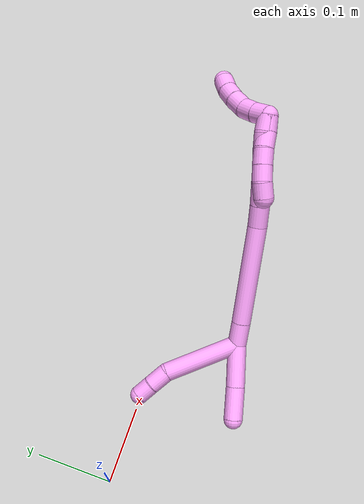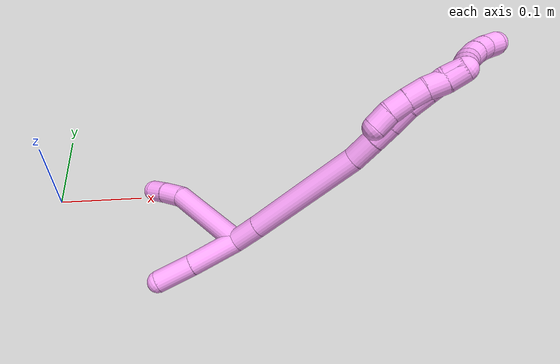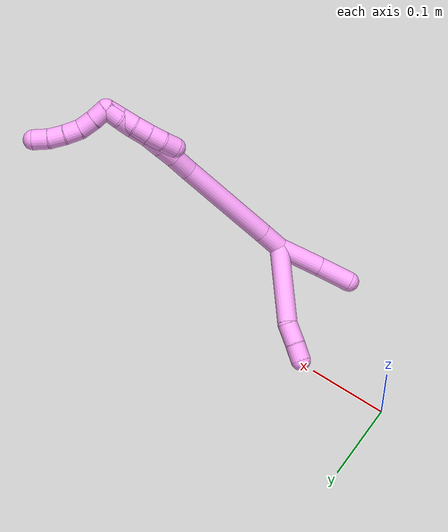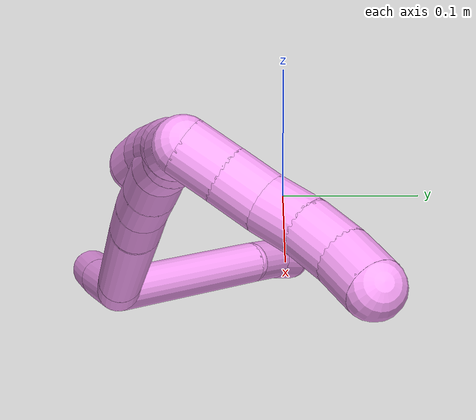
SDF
<sdf version="1.7">
 <world name="default">
  <model name="4">
   <static>0</static>
   <link name="4">
    <collision name="collision-cylinder-e_1_2_8">
     <pose>-0.038061 0.027047 -0.019974 -2.2069 -0.847233 1.45849</pose>
     <geometry><cylinder><radius>0.0125</radius><length>0.10157</length></cylinder></geometry>
     <surface>
      <friction><ode><mu>1.16</mu><mu2>1.16</mu2><slip1>0</slip1><slip2>0</slip2></ode></friction>
      <contact><ode><kp>1e+06</kp><kd>1</kd><max_vel>0</max_vel><min_depth>0.001</min_depth></ode></contact>
     </surface>
    </collision>
    <visual name="visual-cylinder-e_1_2_8">
     <pose>-0.038061 0.027047 -0.019974 -2.2069 -0.847233 1.45849</pose>
     <geometry><cylinder><radius>0.0125</radius><length>0.10157</length></cylinder></geometry>
     <material><ambient>1 0.65098 0.996078 1</ambient></material>
    </visual>
    <collision name="collision-cylinder-e_2_8_9">
     <pose>-0.084482 0.059534 -0.048818 -2.59135 -0.676815 1.78961</pose>
     <geometry><cylinder><radius>0.0125</radius><length>0.026694</length></cylinder></geometry>
     <surface>
      <friction><ode><mu>1.16</mu><mu2>1.16</mu2><slip1>0</slip1><slip2>0</slip2></ode></friction>
      <contact><ode><kp>1e+06</kp><kd>1</kd><max_vel>0</max_vel><min_depth>0.001</min_depth></ode></contact>
     </surface>
    </collision>
    <visual name="visual-cylinder-e_2_8_9">
     <pose>-0.084482 0.059534 -0.048818 -2.59135 -0.676815 1.78961</pose>
     <geometry><cylinder><radius>0.0125</radius><length>0.026694</length></cylinder></geometry>
     <material><ambient>1 0.65098 0.996078 1</ambient></material>
    </visual>
    <collision name="collision-cylinder-e_3_9_6">
     <pose>-0.098763 0.070034 -0.065267 -2.55304 -0.576223 1.54838</pose>
     <geometry><cylinder><radius>0.0125</radius><length>0.021735</length></cylinder></geometry>
     <surface>
      <friction><ode><mu>1.16</mu><mu2>1.16</mu2><slip1>0</slip1><slip2>0</slip2></ode></friction>
      <contact><ode><kp>1e+06</kp><kd>1</kd><max_vel>0</max_vel><min_depth>0.001</min_depth></ode></contact>
     </surface>
    </collision>
    <visual name="visual-cylinder-e_3_9_6">
     <pose>-0.098763 0.070034 -0.065267 -2.55304 -0.576223 1.54838</pose>
     <geometry><cylinder><radius>0.0125</radius><length>0.021735</length></cylinder></geometry>
     <material><ambient>1 0.65098 0.996078 1</ambient></material>
    </visual>
    <collision name="collision-cylinder-e_1_2_10">
     <pose>-0.005706 -0.006207 -0.027018 2.91576 -0.203006 -1.46363</pose>
     <geometry><cylinder><radius>0.0125</radius><length>0.056607</length></cylinder></geometry>
     <surface>
      <friction><ode><mu>1.16</mu><mu2>1.16</mu2><slip1>0</slip1><slip2>0</slip2></ode></friction>
      <contact><ode><kp>1e+06</kp><kd>1</kd><max_vel>0</max_vel><min_depth>0.001</min_depth></ode></contact>
     </surface>
    </collision>
    <visual name="visual-cylinder-e_1_2_10">
     <pose>-0.005706 -0.006207 -0.027018 2.91576 -0.203006 -1.46363</pose>
     <geometry><cylinder><radius>0.0125</radius><length>0.056607</length></cylinder></geometry>
     <material><ambient>1 0.65098 0.996078 1</ambient></material>
    </visual>
    <collision name="collision-cylinder-e_2_10_5">
     <pose>-0.016586 -0.016922 -0.07462 2.92602 -0.240763 -1.68207</pose>
     <geometry><cylinder><radius>0.0125</radius><length>0.043393</length></cylinder></geometry>
     <surface>
      <friction><ode><mu>1.16</mu><mu2>1.16</mu2><slip1>0</slip1><slip2>0</slip2></ode></friction>
      <contact><ode><kp>1e+06</kp><kd>1</kd><max_vel>0</max_vel><min_depth>0.001</min_depth></ode></contact>
     </surface>
    </collision>
    <visual name="visual-cylinder-e_2_10_5">
     <pose>-0.016586 -0.016922 -0.07462 2.92602 -0.240763 -1.68207</pose>
     <geometry><cylinder><radius>0.0125</radius><length>0.043393</length></cylinder></geometry>
     <material><ambient>1 0.65098 0.996078 1</ambient></material>
    </visual>
    <collision name="collision-cylinder-e_1_2_11">
     <pose>0.00119 -0.001263 0.015845 0.07955 0.074754 0.002976</pose>
     <geometry><cylinder><radius>0.0125</radius><length>0.03188</length></cylinder></geometry>
     <surface>
      <friction><ode><mu>1.16</mu><mu2>1.16</mu2><slip1>0</slip1><slip2>0</slip2></ode></friction>
      <contact><ode><kp>1e+06</kp><kd>1</kd><max_vel>0</max_vel><min_depth>0.001</min_depth></ode></contact>
     </surface>
    </collision>
    <visual name="visual-cylinder-e_1_2_11">
     <pose>0.00119 -0.001263 0.015845 0.07955 0.074754 0.002976</pose>
     <geometry><cylinder><radius>0.0125</radius><length>0.03188</length></cylinder></geometry>
     <material><ambient>1 0.65098 0.996078 1</ambient></material>
    </visual>
    <collision name="collision-cylinder-e_2_11_12">
     <pose>0.00562 -0.007382 0.096753 0.0745 0.049601 0.001849</pose>
     <geometry><cylinder><radius>0.0125</radius><length>0.130647</length></cylinder></geometry>
     <surface>
      <friction><ode><mu>1.16</mu><mu2>1.16</mu2><slip1>0</slip1><slip2>0</slip2></ode></friction>
      <contact><ode><kp>1e+06</kp><kd>1</kd><max_vel>0</max_vel><min_depth>0.001</min_depth></ode></contact>
     </surface>
    </collision>
    <visual name="visual-cylinder-e_2_11_12">
     <pose>0.00562 -0.007382 0.096753 0.0745 0.049601 0.001849</pose>
     <geometry><cylinder><radius>0.0125</radius><length>0.130647</length></cylinder></geometry>
     <material><ambient>1 0.65098 0.996078 1</ambient></material>
    </visual>
    <collision name="collision-cylinder-e_3_12_13">
     <pose>0.007658 -0.01397 0.175685 0.12421 -0.085642 -0.005329</pose>
     <geometry><cylinder><radius>0.0125</radius><length>0.028058</length></cylinder></geometry>
     <surface>
      <friction><ode><mu>1.16</mu><mu2>1.16</mu2><slip1>0</slip1><slip2>0</slip2></ode></friction>
      <contact><ode><kp>1e+06</kp><kd>1</kd><max_vel>0</max_vel><min_depth>0.001</min_depth></ode></contact>
     </surface>
    </collision>
    <visual name="visual-cylinder-e_3_12_13">
     <pose>0.007658 -0.01397 0.175685 0.12421 -0.085642 -0.005329</pose>
     <geometry><cylinder><radius>0.0125</radius><length>0.028058</length></cylinder></geometry>
     <material><ambient>1 0.65098 0.996078 1</ambient></material>
    </visual>
    <collision name="collision-cylinder-e_4_13_14">
     <pose>0.0054 -0.016477 0.200965 0.067866 -0.092295 -0.003135</pose>
     <geometry><cylinder><radius>0.0125</radius><length>0.022968</length></cylinder></geometry>
     <surface>
      <friction><ode><mu>1.16</mu><mu2>1.16</mu2><slip1>0</slip1><slip2>0</slip2></ode></friction>
      <contact><ode><kp>1e+06</kp><kd>1</kd><max_vel>0</max_vel><min_depth>0.001</min_depth></ode></contact>
     </surface>
    </collision>
    <visual name="visual-cylinder-e_4_13_14">
     <pose>0.0054 -0.016477 0.200965 0.067866 -0.092295 -0.003135</pose>
     <geometry><cylinder><radius>0.0125</radius><length>0.022968</length></cylinder></geometry>
     <material><ambient>1 0.65098 0.996078 1</ambient></material>
    </visual>
    <collision name="collision-cylinder-e_5_14_15">
     <pose>0.002865 -0.018348 0.22445 0.090429 -0.121207 -0.005491</pose>
     <geometry><cylinder><radius>0.0125</radius><length>0.024431</length></cylinder></geometry>
     <surface>
      <friction><ode><mu>1.16</mu><mu2>1.16</mu2><slip1>0</slip1><slip2>0</slip2></ode></friction>
      <contact><ode><kp>1e+06</kp><kd>1</kd><max_vel>0</max_vel><min_depth>0.001</min_depth></ode></contact>
     </surface>
    </collision>
    <visual name="visual-cylinder-e_5_14_15">
     <pose>0.002865 -0.018348 0.22445 0.090429 -0.121207 -0.005491</pose>
     <geometry><cylinder><radius>0.0125</radius><length>0.024431</length></cylinder></geometry>
     <material><ambient>1 0.65098 0.996078 1</ambient></material>
    </visual>
    <collision name="collision-cylinder-e_6_15_16">
     <pose>0.001734 -0.018533 0.247488 -0.08283 0.031451 -0.001303</pose>
     <geometry><cylinder><radius>0.0125</radius><length>0.02201</length></cylinder></geometry>
     <surface>
      <friction><ode><mu>1.16</mu><mu2>1.16</mu2><slip1>0</slip1><slip2>0</slip2></ode></friction>
      <contact><ode><kp>1e+06</kp><kd>1</kd><max_vel>0</max_vel><min_depth>0.001</min_depth></ode></contact>
     </surface>
    </collision>
    <visual name="visual-cylinder-e_6_15_16">
     <pose>0.001734 -0.018533 0.247488 -0.08283 0.031451 -0.001303</pose>
     <geometry><cylinder><radius>0.0125</radius><length>0.02201</length></cylinder></geometry>
     <material><ambient>1 0.65098 0.996078 1</ambient></material>
    </visual>
    <collision name="collision-cylinder-e_7_16_17">
     <pose>0.002439 -0.017365 0.268442 -0.025787 0.035952 -0.000464</pose>
     <geometry><cylinder><radius>0.0125</radius><length>0.020004</length></cylinder></geometry>
     <surface>
      <friction><ode><mu>1.16</mu><mu2>1.16</mu2><slip1>0</slip1><slip2>0</slip2></ode></friction>
      <contact><ode><kp>1e+06</kp><kd>1</kd><max_vel>0</max_vel><min_depth>0.001</min_depth></ode></contact>
     </surface>
    </collision>
    <visual name="visual-cylinder-e_7_16_17">
     <pose>0.002439 -0.017365 0.268442 -0.025787 0.035952 -0.000464</pose>
     <geometry><cylinder><radius>0.0125</radius><length>0.020004</length></cylinder></geometry>
     <material><ambient>1 0.65098 0.996078 1</ambient></material>
    </visual>
    <collision name="collision-cylinder-e_8_17_1">
     <pose>0.005317 -0.016751 0.288106 -0.036873 0.254546 -0.004719</pose>
     <geometry><cylinder><radius>0.0125</radius><length>0.020001</length></cylinder></geometry>
     <surface>
      <friction><ode><mu>1.16</mu><mu2>1.16</mu2><slip1>0</slip1><slip2>0</slip2></ode></friction>
      <contact><ode><kp>1e+06</kp><kd>1</kd><max_vel>0</max_vel><min_depth>0.001</min_depth></ode></contact>
     </surface>
    </collision>
    <visual name="visual-cylinder-e_8_17_1">
     <pose>0.005317 -0.016751 0.288106 -0.036873 0.254546 -0.004719</pose>
     <geometry><cylinder><radius>0.0125</radius><length>0.020001</length></cylinder></geometry>
     <material><ambient>1 0.65098 0.996078 1</ambient></material>
    </visual>
    <collision name="collision-cylinder-e_1_1_18">
     <pose>0.006374 -0.017441 0.28794 3.03554 -0.146582 -1.88977</pose>
     <geometry><cylinder><radius>0.0125</radius><length>0.02</length></cylinder></geometry>
     <surface>
      <friction><ode><mu>1.16</mu><mu2>1.16</mu2><slip1>0</slip1><slip2>0</slip2></ode></friction>
      <contact><ode><kp>1e+06</kp><kd>1</kd><max_vel>0</max_vel><min_depth>0.001</min_depth></ode></contact>
     </surface>
    </collision>
    <visual name="visual-cylinder-e_1_1_18">
     <pose>0.006374 -0.017441 0.28794 3.03554 -0.146582 -1.88977</pose>
     <geometry><cylinder><radius>0.0125</radius><length>0.02</length></cylinder></geometry>
     <material><ambient>1 0.65098 0.996078 1</ambient></material>
    </visual>
    <collision name="collision-cylinder-e_2_18_19">
     <pose>0.001735 -0.019969 0.268738 2.98482 -0.32349 -2.24431</pose>
     <geometry><cylinder><radius>0.0125</radius><length>0.02</length></cylinder></geometry>
     <surface>
      <friction><ode><mu>1.16</mu><mu2>1.16</mu2><slip1>0</slip1><slip2>0</slip2></ode></friction>
      <contact><ode><kp>1e+06</kp><kd>1</kd><max_vel>0</max_vel><min_depth>0.001</min_depth></ode></contact>
     </surface>
    </collision>
    <visual name="visual-cylinder-e_2_18_19">
     <pose>0.001735 -0.019969 0.268738 2.98482 -0.32349 -2.24431</pose>
     <geometry><cylinder><radius>0.0125</radius><length>0.02</length></cylinder></geometry>
     <material><ambient>1 0.65098 0.996078 1</ambient></material>
    </visual>
    <collision name="collision-cylinder-e_3_19_20">
     <pose>-0.003082 -0.022799 0.249601 3.00434 -0.164599 -1.7522</pose>
     <geometry><cylinder><radius>0.0125</radius><length>0.02</length></cylinder></geometry>
     <surface>
      <friction><ode><mu>1.16</mu><mu2>1.16</mu2><slip1>0</slip1><slip2>0</slip2></ode></friction>
      <contact><ode><kp>1e+06</kp><kd>1</kd><max_vel>0</max_vel><min_depth>0.001</min_depth></ode></contact>
     </surface>
    </collision>
    <visual name="visual-cylinder-e_3_19_20">
     <pose>-0.003082 -0.022799 0.249601 3.00434 -0.164599 -1.7522</pose>
     <geometry><cylinder><radius>0.0125</radius><length>0.02</length></cylinder></geometry>
     <material><ambient>1 0.65098 0.996078 1</ambient></material>
    </visual>
    <collision name="collision-cylinder-e_4_20_21">
     <pose>-0.005721 -0.025751 0.230009 2.9798 -0.100145 -1.10731</pose>
     <geometry><cylinder><radius>0.0125</radius><length>0.02</length></cylinder></geometry>
     <surface>
      <friction><ode><mu>1.16</mu><mu2>1.16</mu2><slip1>0</slip1><slip2>0</slip2></ode></friction>
      <contact><ode><kp>1e+06</kp><kd>1</kd><max_vel>0</max_vel><min_depth>0.001</min_depth></ode></contact>
     </surface>
    </collision>
    <visual name="visual-cylinder-e_4_20_21">
     <pose>-0.005721 -0.025751 0.230009 2.9798 -0.100145 -1.10731</pose>
     <geometry><cylinder><radius>0.0125</radius><length>0.02</length></cylinder></geometry>
     <material><ambient>1 0.65098 0.996078 1</ambient></material>
    </visual>
    <collision name="collision-cylinder-e_5_21_4">
     <pose>-0.005617 -0.028589 0.210327 3.01701 0.110563 1.45138</pose>
     <geometry><cylinder><radius>0.0125</radius><length>0.02</length></cylinder></geometry>
     <surface>
      <friction><ode><mu>1.16</mu><mu2>1.16</mu2><slip1>0</slip1><slip2>0</slip2></ode></friction>
      <contact><ode><kp>1e+06</kp><kd>1</kd><max_vel>0</max_vel><min_depth>0.001</min_depth></ode></contact>
     </surface>
    </collision>
    <visual name="visual-cylinder-e_5_21_4">
     <pose>-0.005617 -0.028589 0.210327 3.01701 0.110563 1.45138</pose>
     <geometry><cylinder><radius>0.0125</radius><length>0.02</length></cylinder></geometry>
     <material><ambient>1 0.65098 0.996078 1</ambient></material>
    </visual>
    <collision name="collision-cylinder-e_1_1_22">
     <pose>0.007557 -0.006524 0.299359 -1.41194 -0.027811 0.023711</pose>
     <geometry><cylinder><radius>0.0125</radius><length>0.02</length></cylinder></geometry>
     <surface>
      <friction><ode><mu>1.16</mu><mu2>1.16</mu2><slip1>0</slip1><slip2>0</slip2></ode></friction>
      <contact><ode><kp>1e+06</kp><kd>1</kd><max_vel>0</max_vel><min_depth>0.001</min_depth></ode></contact>
     </surface>
    </collision>
    <visual name="visual-cylinder-e_1_1_22">
     <pose>0.007557 -0.006524 0.299359 -1.41194 -0.027811 0.023711</pose>
     <geometry><cylinder><radius>0.0125</radius><length>0.02</length></cylinder></geometry>
     <material><ambient>1 0.65098 0.996078 1</ambient></material>
    </visual>
    <collision name="collision-cylinder-e_2_22_23">
     <pose>0.007448 0.013026 0.303447 -1.31736 0.016904 -0.013084</pose>
     <geometry><cylinder><radius>0.0125</radius><length>0.02</length></cylinder></geometry>
     <surface>
      <friction><ode><mu>1.16</mu><mu2>1.16</mu2><slip1>0</slip1><slip2>0</slip2></ode></friction>
      <contact><ode><kp>1e+06</kp><kd>1</kd><max_vel>0</max_vel><min_depth>0.001</min_depth></ode></contact>
     </surface>
    </collision>
    <visual name="visual-cylinder-e_2_22_23">
     <pose>0.007448 0.013026 0.303447 -1.31736 0.016904 -0.013084</pose>
     <geometry><cylinder><radius>0.0125</radius><length>0.02</length></cylinder></geometry>
     <material><ambient>1 0.65098 0.996078 1</ambient></material>
    </visual>
    <collision name="collision-cylinder-e_3_23_24">
     <pose>0.008084 0.031278 0.311081 -1.03177 0.046687 -0.02648</pose>
     <geometry><cylinder><radius>0.0125</radius><length>0.02</length></cylinder></geometry>
     <surface>
      <friction><ode><mu>1.16</mu><mu2>1.16</mu2><slip1>0</slip1><slip2>0</slip2></ode></friction>
      <contact><ode><kp>1e+06</kp><kd>1</kd><max_vel>0</max_vel><min_depth>0.001</min_depth></ode></contact>
     </surface>
    </collision>
    <visual name="visual-cylinder-e_3_23_24">
     <pose>0.008084 0.031278 0.311081 -1.03177 0.046687 -0.02648</pose>
     <geometry><cylinder><radius>0.0125</radius><length>0.02</length></cylinder></geometry>
     <material><ambient>1 0.65098 0.996078 1</ambient></material>
    </visual>
    <collision name="collision-cylinder-e_4_24_25">
     <pose>0.010375 0.048097 0.321563 -0.99493 0.183469 -0.099824</pose>
     <geometry><cylinder><radius>0.0125</radius><length>0.02</length></cylinder></geometry>
     <surface>
      <friction><ode><mu>1.16</mu><mu2>1.16</mu2><slip1>0</slip1><slip2>0</slip2></ode></friction>
      <contact><ode><kp>1e+06</kp><kd>1</kd><max_vel>0</max_vel><min_depth>0.001</min_depth></ode></contact>
     </surface>
    </collision>
    <visual name="visual-cylinder-e_4_24_25">
     <pose>0.010375 0.048097 0.321563 -0.99493 0.183469 -0.099824</pose>
     <geometry><cylinder><radius>0.0125</radius><length>0.02</length></cylinder></geometry>
     <material><ambient>1 0.65098 0.996078 1</ambient></material>
    </visual>
    <collision name="collision-cylinder-e_5_25_3">
     <pose>0.01539 0.063408 0.333234 -0.841203 0.324768 -0.146296</pose>
     <geometry><cylinder><radius>0.0125</radius><length>0.02</length></cylinder></geometry>
     <surface>
      <friction><ode><mu>1.16</mu><mu2>1.16</mu2><slip1>0</slip1><slip2>0</slip2></ode></friction>
      <contact><ode><kp>1e+06</kp><kd>1</kd><max_vel>0</max_vel><min_depth>0.001</min_depth></ode></contact>
     </surface>
    </collision>
    <visual name="visual-cylinder-e_5_25_3">
     <pose>0.01539 0.063408 0.333234 -0.841203 0.324768 -0.146296</pose>
     <geometry><cylinder><radius>0.0125</radius><length>0.02</length></cylinder></geometry>
     <material><ambient>1 0.65098 0.996078 1</ambient></material>
    </visual>
    <collision name="collision-sphere-3">
     <pose>0.018581 0.070473 0.339551 0 -0 0</pose>
     <geometry><sphere><radius>0.0125</radius></sphere></geometry>
     <surface>
      <friction><ode><mu>1.16</mu><mu2>1.16</mu2><slip1>0</slip1><slip2>0</slip2></ode></friction>
      <contact><ode><kp>1e+06</kp><kd>1</kd><max_vel>0</max_vel><min_depth>0.001</min_depth></ode></contact>
     </surface>
    </collision>
    <visual name="visual-sphere-3">
     <pose>0.018581 0.070473 0.339551 0 -0 0</pose>
     <geometry><sphere><radius>0.0125</radius></sphere></geometry>
     <material><ambient>1 0.65098 0.996078 1</ambient></material>
    </visual>
    <collision name="collision-sphere-25">
     <pose>0.012199 0.056343 0.326917 0 -0 0</pose>
     <geometry><sphere><radius>0.0125</radius></sphere></geometry>
     <surface>
      <friction><ode><mu>1.16</mu><mu2>1.16</mu2><slip1>0</slip1><slip2>0</slip2></ode></friction>
      <contact><ode><kp>1e+06</kp><kd>1</kd><max_vel>0</max_vel><min_depth>0.001</min_depth></ode></contact>
     </surface>
    </collision>
    <visual name="visual-sphere-25">
     <pose>0.012199 0.056343 0.326917 0 -0 0</pose>
     <geometry><sphere><radius>0.0125</radius></sphere></geometry>
     <material><ambient>1 0.65098 0.996078 1</ambient></material>
    </visual>
    <collision name="collision-sphere-24">
     <pose>0.00855 0.039851 0.316209 0 -0 0</pose>
     <geometry><sphere><radius>0.0125</radius></sphere></geometry>
     <surface>
      <friction><ode><mu>1.16</mu><mu2>1.16</mu2><slip1>0</slip1><slip2>0</slip2></ode></friction>
      <contact><ode><kp>1e+06</kp><kd>1</kd><max_vel>0</max_vel><min_depth>0.001</min_depth></ode></contact>
     </surface>
    </collision>
    <visual name="visual-sphere-24">
     <pose>0.00855 0.039851 0.316209 0 -0 0</pose>
     <geometry><sphere><radius>0.0125</radius></sphere></geometry>
     <material><ambient>1 0.65098 0.996078 1</ambient></material>
    </visual>
    <collision name="collision-sphere-23">
     <pose>0.007617 0.022705 0.305954 0 -0 0</pose>
     <geometry><sphere><radius>0.0125</radius></sphere></geometry>
     <surface>
      <friction><ode><mu>1.16</mu><mu2>1.16</mu2><slip1>0</slip1><slip2>0</slip2></ode></friction>
      <contact><ode><kp>1e+06</kp><kd>1</kd><max_vel>0</max_vel><min_depth>0.001</min_depth></ode></contact>
     </surface>
    </collision>
    <visual name="visual-sphere-23">
     <pose>0.007617 0.022705 0.305954 0 -0 0</pose>
     <geometry><sphere><radius>0.0125</radius></sphere></geometry>
     <material><ambient>1 0.65098 0.996078 1</ambient></material>
    </visual>
    <collision name="collision-sphere-22">
     <pose>0.007279 0.003347 0.30094 0 -0 0</pose>
     <geometry><sphere><radius>0.0125</radius></sphere></geometry>
     <surface>
      <friction><ode><mu>1.16</mu><mu2>1.16</mu2><slip1>0</slip1><slip2>0</slip2></ode></friction>
      <contact><ode><kp>1e+06</kp><kd>1</kd><max_vel>0</max_vel><min_depth>0.001</min_depth></ode></contact>
     </surface>
    </collision>
    <visual name="visual-sphere-22">
     <pose>0.007279 0.003347 0.30094 0 -0 0</pose>
     <geometry><sphere><radius>0.0125</radius></sphere></geometry>
     <material><ambient>1 0.65098 0.996078 1</ambient></material>
    </visual>
    <collision name="collision-sphere-4">
     <pose>-0.004514 -0.029824 0.200465 0 -0 0</pose>
     <geometry><sphere><radius>0.0125</radius></sphere></geometry>
     <surface>
      <friction><ode><mu>1.16</mu><mu2>1.16</mu2><slip1>0</slip1><slip2>0</slip2></ode></friction>
      <contact><ode><kp>1e+06</kp><kd>1</kd><max_vel>0</max_vel><min_depth>0.001</min_depth></ode></contact>
     </surface>
    </collision>
    <visual name="visual-sphere-4">
     <pose>-0.004514 -0.029824 0.200465 0 -0 0</pose>
     <geometry><sphere><radius>0.0125</radius></sphere></geometry>
     <material><ambient>1 0.65098 0.996078 1</ambient></material>
    </visual>
    <collision name="collision-sphere-21">
     <pose>-0.00672 -0.027354 0.220189 0 -0 0</pose>
     <geometry><sphere><radius>0.0125</radius></sphere></geometry>
     <surface>
      <friction><ode><mu>1.16</mu><mu2>1.16</mu2><slip1>0</slip1><slip2>0</slip2></ode></friction>
      <contact><ode><kp>1e+06</kp><kd>1</kd><max_vel>0</max_vel><min_depth>0.001</min_depth></ode></contact>
     </surface>
    </collision>
    <visual name="visual-sphere-21">
     <pose>-0.00672 -0.027354 0.220189 0 -0 0</pose>
     <geometry><sphere><radius>0.0125</radius></sphere></geometry>
     <material><ambient>1 0.65098 0.996078 1</ambient></material>
    </visual>
    <collision name="collision-sphere-20">
     <pose>-0.004721 -0.024148 0.239829 0 -0 0</pose>
     <geometry><sphere><radius>0.0125</radius></sphere></geometry>
     <surface>
      <friction><ode><mu>1.16</mu><mu2>1.16</mu2><slip1>0</slip1><slip2>0</slip2></ode></friction>
      <contact><ode><kp>1e+06</kp><kd>1</kd><max_vel>0</max_vel><min_depth>0.001</min_depth></ode></contact>
     </surface>
    </collision>
    <visual name="visual-sphere-20">
     <pose>-0.004721 -0.024148 0.239829 0 -0 0</pose>
     <geometry><sphere><radius>0.0125</radius></sphere></geometry>
     <material><ambient>1 0.65098 0.996078 1</ambient></material>
    </visual>
    <collision name="collision-sphere-5">
     <pose>-0.02176 -0.021429 -0.095203 0 -0 0</pose>
     <geometry><sphere><radius>0.0125</radius></sphere></geometry>
     <surface>
      <friction><ode><mu>1.16</mu><mu2>1.16</mu2><slip1>0</slip1><slip2>0</slip2></ode></friction>
      <contact><ode><kp>1e+06</kp><kd>1</kd><max_vel>0</max_vel><min_depth>0.001</min_depth></ode></contact>
     </surface>
    </collision>
    <visual name="visual-sphere-5">
     <pose>-0.02176 -0.021429 -0.095203 0 -0 0</pose>
     <geometry><sphere><radius>0.0125</radius></sphere></geometry>
     <material><ambient>1 0.65098 0.996078 1</ambient></material>
    </visual>
    <collision name="collision-sphere-10">
     <pose>-0.011413 -0.012415 -0.054036 0 -0 0</pose>
     <geometry><sphere><radius>0.0125</radius></sphere></geometry>
     <surface>
      <friction><ode><mu>1.16</mu><mu2>1.16</mu2><slip1>0</slip1><slip2>0</slip2></ode></friction>
      <contact><ode><kp>1e+06</kp><kd>1</kd><max_vel>0</max_vel><min_depth>0.001</min_depth></ode></contact>
     </surface>
    </collision>
    <visual name="visual-sphere-10">
     <pose>-0.011413 -0.012415 -0.054036 0 -0 0</pose>
     <geometry><sphere><radius>0.0125</radius></sphere></geometry>
     <material><ambient>1 0.65098 0.996078 1</ambient></material>
    </visual>
    <collision name="collision-sphere-6">
     <pose>-0.104684 0.075093 -0.072846 0 -0 0</pose>
     <geometry><sphere><radius>0.0125</radius></sphere></geometry>
     <surface>
      <friction><ode><mu>1.16</mu><mu2>1.16</mu2><slip1>0</slip1><slip2>0</slip2></ode></friction>
      <contact><ode><kp>1e+06</kp><kd>1</kd><max_vel>0</max_vel><min_depth>0.001</min_depth></ode></contact>
     </surface>
    </collision>
    <visual name="visual-sphere-6">
     <pose>-0.104684 0.075093 -0.072846 0 -0 0</pose>
     <geometry><sphere><radius>0.0125</radius></sphere></geometry>
     <material><ambient>1 0.65098 0.996078 1</ambient></material>
    </visual>
    <collision name="collision-sphere-9">
     <pose>-0.092841 0.064975 -0.057687 0 -0 0</pose>
     <geometry><sphere><radius>0.0125</radius></sphere></geometry>
     <surface>
      <friction><ode><mu>1.16</mu><mu2>1.16</mu2><slip1>0</slip1><slip2>0</slip2></ode></friction>
      <contact><ode><kp>1e+06</kp><kd>1</kd><max_vel>0</max_vel><min_depth>0.001</min_depth></ode></contact>
     </surface>
    </collision>
    <visual name="visual-sphere-9">
     <pose>-0.092841 0.064975 -0.057687 0 -0 0</pose>
     <geometry><sphere><radius>0.0125</radius></sphere></geometry>
     <material><ambient>1 0.65098 0.996078 1</ambient></material>
    </visual>
    <collision name="collision-sphere-2">
     <geometry><sphere><radius>0.0125</radius></sphere></geometry>
     <surface>
      <friction><ode><mu>1.16</mu><mu2>1.16</mu2><slip1>0</slip1><slip2>0</slip2></ode></friction>
      <contact><ode><kp>1e+06</kp><kd>1</kd><max_vel>0</max_vel><min_depth>0.001</min_depth></ode></contact>
     </surface>
    </collision>
    <visual name="visual-sphere-2">
     <geometry><sphere><radius>0.0125</radius></sphere></geometry>
     <material><ambient>1 0.65098 0.996078 1</ambient></material>
    </visual>
    <collision name="collision-sphere-19">
     <pose>-0.001444 -0.021449 0.259373 0 -0 0</pose>
     <geometry><sphere><radius>0.0125</radius></sphere></geometry>
     <surface>
      <friction><ode><mu>1.16</mu><mu2>1.16</mu2><slip1>0</slip1><slip2>0</slip2></ode></friction>
      <contact><ode><kp>1e+06</kp><kd>1</kd><max_vel>0</max_vel><min_depth>0.001</min_depth></ode></contact>
     </surface>
    </collision>
    <visual name="visual-sphere-19">
     <pose>-0.001444 -0.021449 0.259373 0 -0 0</pose>
     <geometry><sphere><radius>0.0125</radius></sphere></geometry>
     <material><ambient>1 0.65098 0.996078 1</ambient></material>
    </visual>
    <collision name="collision-sphere-8">
     <pose>-0.076122 0.054093 -0.039948 0 -0 0</pose>
     <geometry><sphere><radius>0.0125</radius></sphere></geometry>
     <surface>
      <friction><ode><mu>1.16</mu><mu2>1.16</mu2><slip1>0</slip1><slip2>0</slip2></ode></friction>
      <contact><ode><kp>1e+06</kp><kd>1</kd><max_vel>0</max_vel><min_depth>0.001</min_depth></ode></contact>
     </surface>
    </collision>
    <visual name="visual-sphere-8">
     <pose>-0.076122 0.054093 -0.039948 0 -0 0</pose>
     <geometry><sphere><radius>0.0125</radius></sphere></geometry>
     <material><ambient>1 0.65098 0.996078 1</ambient></material>
    </visual>
    <collision name="collision-sphere-11">
     <pose>0.002381 -0.002526 0.031691 0 -0 0</pose>
     <geometry><sphere><radius>0.0125</radius></sphere></geometry>
     <surface>
      <friction><ode><mu>1.16</mu><mu2>1.16</mu2><slip1>0</slip1><slip2>0</slip2></ode></friction>
      <contact><ode><kp>1e+06</kp><kd>1</kd><max_vel>0</max_vel><min_depth>0.001</min_depth></ode></contact>
     </surface>
    </collision>
    <visual name="visual-sphere-11">
     <pose>0.002381 -0.002526 0.031691 0 -0 0</pose>
     <geometry><sphere><radius>0.0125</radius></sphere></geometry>
     <material><ambient>1 0.65098 0.996078 1</ambient></material>
    </visual>
    <collision name="collision-sphere-12">
     <pose>0.008858 -0.012239 0.161815 0 -0 0</pose>
     <geometry><sphere><radius>0.0125</radius></sphere></geometry>
     <surface>
      <friction><ode><mu>1.16</mu><mu2>1.16</mu2><slip1>0</slip1><slip2>0</slip2></ode></friction>
      <contact><ode><kp>1e+06</kp><kd>1</kd><max_vel>0</max_vel><min_depth>0.001</min_depth></ode></contact>
     </surface>
    </collision>
    <visual name="visual-sphere-12">
     <pose>0.008858 -0.012239 0.161815 0 -0 0</pose>
     <geometry><sphere><radius>0.0125</radius></sphere></geometry>
     <material><ambient>1 0.65098 0.996078 1</ambient></material>
    </visual>
    <collision name="collision-sphere-13">
     <pose>0.006458 -0.015702 0.189556 0 -0 0</pose>
     <geometry><sphere><radius>0.0125</radius></sphere></geometry>
     <surface>
      <friction><ode><mu>1.16</mu><mu2>1.16</mu2><slip1>0</slip1><slip2>0</slip2></ode></friction>
      <contact><ode><kp>1e+06</kp><kd>1</kd><max_vel>0</max_vel><min_depth>0.001</min_depth></ode></contact>
     </surface>
    </collision>
    <visual name="visual-sphere-13">
     <pose>0.006458 -0.015702 0.189556 0 -0 0</pose>
     <geometry><sphere><radius>0.0125</radius></sphere></geometry>
     <material><ambient>1 0.65098 0.996078 1</ambient></material>
    </visual>
    <collision name="collision-sphere-14">
     <pose>0.004342 -0.017253 0.212374 0 -0 0</pose>
     <geometry><sphere><radius>0.0125</radius></sphere></geometry>
     <surface>
      <friction><ode><mu>1.16</mu><mu2>1.16</mu2><slip1>0</slip1><slip2>0</slip2></ode></friction>
      <contact><ode><kp>1e+06</kp><kd>1</kd><max_vel>0</max_vel><min_depth>0.001</min_depth></ode></contact>
     </surface>
    </collision>
    <visual name="visual-sphere-14">
     <pose>0.004342 -0.017253 0.212374 0 -0 0</pose>
     <geometry><sphere><radius>0.0125</radius></sphere></geometry>
     <material><ambient>1 0.65098 0.996078 1</ambient></material>
    </visual>
    <collision name="collision-sphere-15">
     <pose>0.001388 -0.019443 0.236526 0 -0 0</pose>
     <geometry><sphere><radius>0.0125</radius></sphere></geometry>
     <surface>
      <friction><ode><mu>1.16</mu><mu2>1.16</mu2><slip1>0</slip1><slip2>0</slip2></ode></friction>
      <contact><ode><kp>1e+06</kp><kd>1</kd><max_vel>0</max_vel><min_depth>0.001</min_depth></ode></contact>
     </surface>
    </collision>
    <visual name="visual-sphere-15">
     <pose>0.001388 -0.019443 0.236526 0 -0 0</pose>
     <geometry><sphere><radius>0.0125</radius></sphere></geometry>
     <material><ambient>1 0.65098 0.996078 1</ambient></material>
    </visual>
    <collision name="collision-sphere-16">
     <pose>0.00208 -0.017623 0.25845 0 -0 0</pose>
     <geometry><sphere><radius>0.0125</radius></sphere></geometry>
     <surface>
      <friction><ode><mu>1.16</mu><mu2>1.16</mu2><slip1>0</slip1><slip2>0</slip2></ode></friction>
      <contact><ode><kp>1e+06</kp><kd>1</kd><max_vel>0</max_vel><min_depth>0.001</min_depth></ode></contact>
     </surface>
    </collision>
    <visual name="visual-sphere-16">
     <pose>0.00208 -0.017623 0.25845 0 -0 0</pose>
     <geometry><sphere><radius>0.0125</radius></sphere></geometry>
     <material><ambient>1 0.65098 0.996078 1</ambient></material>
    </visual>
    <collision name="collision-sphere-17">
     <pose>0.002799 -0.017107 0.278434 0 -0 0</pose>
     <geometry><sphere><radius>0.0125</radius></sphere></geometry>
     <surface>
      <friction><ode><mu>1.16</mu><mu2>1.16</mu2><slip1>0</slip1><slip2>0</slip2></ode></friction>
      <contact><ode><kp>1e+06</kp><kd>1</kd><max_vel>0</max_vel><min_depth>0.001</min_depth></ode></contact>
     </surface>
    </collision>
    <visual name="visual-sphere-17">
     <pose>0.002799 -0.017107 0.278434 0 -0 0</pose>
     <geometry><sphere><radius>0.0125</radius></sphere></geometry>
     <material><ambient>1 0.65098 0.996078 1</ambient></material>
    </visual>
    <collision name="collision-sphere-1">
     <pose>0.007835 -0.016394 0.297777 0 -0 0</pose>
     <geometry><sphere><radius>0.0125</radius></sphere></geometry>
     <surface>
      <friction><ode><mu>1.16</mu><mu2>1.16</mu2><slip1>0</slip1><slip2>0</slip2></ode></friction>
      <contact><ode><kp>1e+06</kp><kd>1</kd><max_vel>0</max_vel><min_depth>0.001</min_depth></ode></contact>
     </surface>
    </collision>
    <visual name="visual-sphere-1">
     <pose>0.007835 -0.016394 0.297777 0 -0 0</pose>
     <geometry><sphere><radius>0.0125</radius></sphere></geometry>
     <material><ambient>1 0.65098 0.996078 1</ambient></material>
    </visual>
    <collision name="collision-sphere-18">
     <pose>0.004914 -0.018488 0.278103 0 -0 0</pose>
     <geometry><sphere><radius>0.0125</radius></sphere></geometry>
     <surface>
      <friction><ode><mu>1.16</mu><mu2>1.16</mu2><slip1>0</slip1><slip2>0</slip2></ode></friction>
      <contact><ode><kp>1e+06</kp><kd>1</kd><max_vel>0</max_vel><min_depth>0.001</min_depth></ode></contact>
     </surface>
    </collision>
    <visual name="visual-sphere-18">
     <pose>0.004914 -0.018488 0.278103 0 -0 0</pose>
     <geometry><sphere><radius>0.0125</radius></sphere></geometry>
     <material><ambient>1 0.65098 0.996078 1</ambient></material>
    </visual>
    <inertial>
     <pose>-0.009447 0.002872 0.122056 0 -0 0</pose>
     <mass>0.75</mass>
     <inertia>
      <ixx>0.000245</ixx>
      <ixy>0</ixy>
      <ixz>0</ixz>
      <iyy>0.000304</iyy>
      <iyz>0</iyz>
      <izz>3.8e-05</izz>
     </inertia>
    </inertial>
   </link>
   <pose>0.218377 -0.100582 0.04759 -0.746941 0.542392 -0.756569</pose>
  </model>
 </world>
</sdf>
